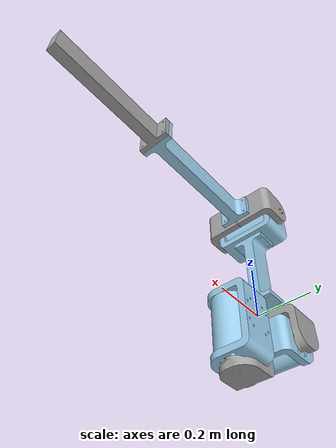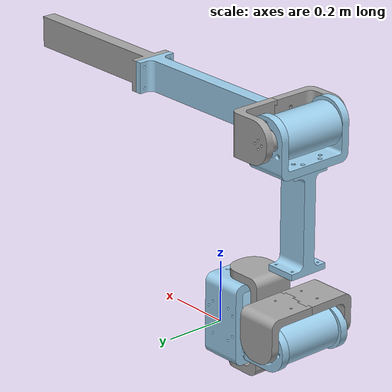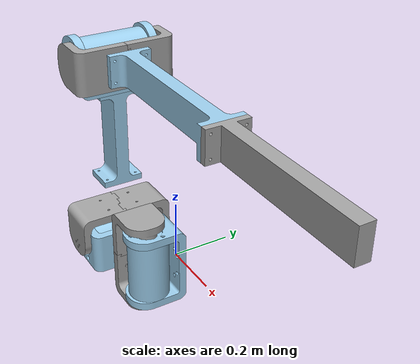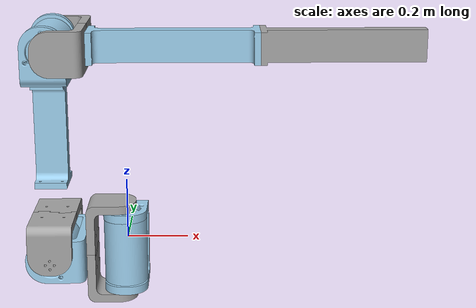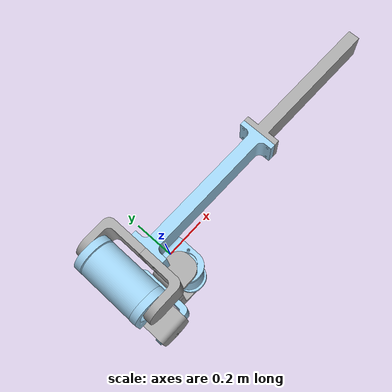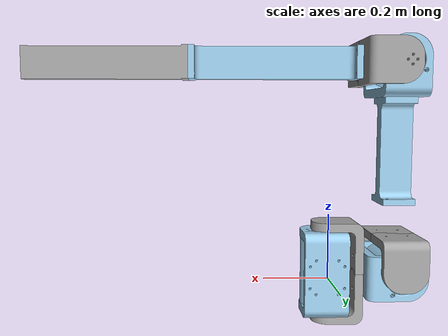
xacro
<?xml version="1.0"?>
<!-- Basic differential drive mobile base -->
<robot xmlns:xacro="http://www.ros.org/wiki/xacro" name="diffdrive_robot">

  <xacro:include filename="$(find spider-description)/robot.urdf" />

  <ros2_control name="Spider" type="system">
    <hardware>
        <plugin>spider_ros_control/SpiderHardwareInterface</plugin>
        <param name="serial_port">/dev/tty.usbmodem210</param>
    </hardware>

    <joint name="1-1">
       <param name="leg_id">1</param>
       <param name="motor_id">1</param>
    </joint>
    <joint name="1-2">
       <param name="leg_id">1</param>
       <param name="motor_id">2</param>
    </joint>
    <joint name="1-3">
       <param name="leg_id">1</param>
       <param name="motor_id">3</param>
    </joint>

  </ros2_control>

</robot>

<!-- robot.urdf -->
<!-- Generated using onshape-to-robot -->
<!-- Onshape https://cad.onshape.com/documents/238e8faca9c7214bccace665/w/ac168b104948c1f839976186/e/24599102151386cccc6b72ba -->
<robot name="spider-description">
  <!-- Link motor_holder -->
  <link name="motor_holder">
    <inertial>
      <origin xyz="0 0 0" rpy="0 0 0"/>
      <mass value="0"/>
      <inertia ixx="0" ixy="0" ixz="0" iyy="0" iyz="0" izz="0"/>
    </inertial>
    <!-- Part motor_holder -->
    <visual>
      <origin xyz="-0.07 -0.027 1.38778e-17" rpy="-3.14159 -1.5708 0"/>
      <geometry>
        <mesh filename="package://spider-description/assets/motor_holder.stl"/>
      </geometry>
      <material name="motor_holder_material">
        <color rgba="0.615686 0.811765 0.929412 1"/>
      </material>
    </visual>
    <collision>
      <origin xyz="-0.07 -0.027 1.38778e-17" rpy="-3.14159 -1.5708 0"/>
      <geometry>
        <mesh filename="package://spider-description/assets/motor_holder.stl"/>
      </geometry>
    </collision>
    <!-- Part motor_model -->
    <visual>
      <origin xyz="-1.38778e-17 -0.106278 -0.108" rpy="0 -0 -1.5708"/>
      <geometry>
        <mesh filename="package://spider-description/assets/motor_model.stl"/>
      </geometry>
      <material name="motor_model_material">
        <color rgba="0.615686 0.811765 0.929412 1"/>
      </material>
    </visual>
    <collision>
      <origin xyz="-1.38778e-17 -0.106278 -0.108" rpy="0 -0 -1.5708"/>
      <geometry>
        <mesh filename="package://spider-description/assets/motor_model.stl"/>
      </geometry>
    </collision>
  </link>
  <!-- Link moving_frame_l -->
  <link name="moving_frame_l">
    <inertial>
      <origin xyz="0.166888 -0.000702224 0.11374" rpy="0 0 0"/>
      <mass value="9.51769"/>
      <inertia ixx="0.0949959" ixy="0.000393819" ixz="0.000302419" iyy="0.1134" iyz="-1.35219e-06" izz="0.10408"/>
    </inertial>
    <!-- Part motor_holder_2 -->
    <visual>
      <origin xyz="0.149 -0.000161803 0.04355" rpy="-1.4383e-16 -4.73317e-30 -1.5708"/>
      <geometry>
        <mesh filename="package://spider-description/assets/motor_holder.stl"/>
      </geometry>
      <material name="motor_holder_2_material">
        <color rgba="0.615686 0.811765 0.929412 1"/>
      </material>
    </visual>
    <collision>
      <origin xyz="0.149 -0.000161803 0.04355" rpy="-1.4383e-16 -4.73317e-30 -1.5708"/>
      <geometry>
        <mesh filename="package://spider-description/assets/motor_holder.stl"/>
      </geometry>
    </collision>
    <!-- Part motor_model_2 -->
    <visual>
      <origin xyz="0.228278 0.107838 0.11355" rpy="1.5708 1.5708 0"/>
      <geometry>
        <mesh filename="package://spider-description/assets/motor_model.stl"/>
      </geometry>
      <material name="motor_model_2_material">
        <color rgba="0.615686 0.811765 0.929412 1"/>
      </material>
    </visual>
    <collision>
      <origin xyz="0.228278 0.107838 0.11355" rpy="1.5708 1.5708 0"/>
      <geometry>
        <mesh filename="package://spider-description/assets/motor_model.stl"/>
      </geometry>
    </collision>
    <!-- Part moving_frame_r -->
    <visual>
      <origin xyz="-0.08 0.07 0.11365" rpy="1.5708 1.5708 0"/>
      <geometry>
        <mesh filename="package://spider-description/assets/moving_frame_r.stl"/>
      </geometry>
      <material name="moving_frame_r_material">
        <color rgba="0.647059 0.647059 0.647059 1"/>
      </material>
    </visual>
    <collision>
      <origin xyz="-0.08 0.07 0.11365" rpy="1.5708 1.5708 0"/>
      <geometry>
        <mesh filename="package://spider-description/assets/moving_frame_r.stl"/>
      </geometry>
    </collision>
    <!-- Part moving_frame_l -->
    <visual>
      <origin xyz="-0.08 0.07 0.11345" rpy="1.5708 1.5708 0"/>
      <geometry>
        <mesh filename="package://spider-description/assets/moving_frame_l.stl"/>
      </geometry>
      <material name="moving_frame_l_material">
        <color rgba="0.647059 0.647059 0.647059 1"/>
      </material>
    </visual>
    <collision>
      <origin xyz="-0.08 0.07 0.11345" rpy="1.5708 1.5708 0"/>
      <geometry>
        <mesh filename="package://spider-description/assets/moving_frame_l.stl"/>
      </geometry>
    </collision>
  </link>
  <!-- Link moving_frame_l_2 -->
  <link name="moving_frame_l_2">
    <inertial>
      <origin xyz="-0.00012427 -0.438975 -0.113249" rpy="0 0 0"/>
      <mass value="12.6662"/>
      <inertia ixx="0.888548" ixy="-0.000174694" ixz="3.56443e-07" iyy="0.0992591" iyz="0.00208744" izz="0.821886"/>
    </inertial>
    <!-- Part motor_model_3 -->
    <visual>
      <origin xyz="-0.000161803 -0.668278 -0.22155" rpy="-3.07249e-15 -2.42575e-15 -2.5235e-14"/>
      <geometry>
        <mesh filename="package://spider-description/assets/motor_model.stl"/>
      </geometry>
      <material name="motor_model_3_material">
        <color rgba="0.615686 0.811765 0.929412 1"/>
      </material>
    </visual>
    <collision>
      <origin xyz="-0.000161803 -0.668278 -0.22155" rpy="-3.07249e-15 -2.42575e-15 -2.5235e-14"/>
      <geometry>
        <mesh filename="package://spider-description/assets/motor_model.stl"/>
      </geometry>
    </collision>
    <!-- Part femur__limb_legnth_0_4_meter -->
    <visual>
      <origin xyz="-0.000161803 -0.562 -0.11355" rpy="-1.5708 -1.5708 0"/>
      <geometry>
        <mesh filename="package://spider-description/assets/femur__limb_legnth_0_4_meter.stl"/>
      </geometry>
      <material name="femur__limb_legnth_0_4_meter_material">
        <color rgba="0.615686 0.811765 0.929412 1"/>
      </material>
    </visual>
    <collision>
      <origin xyz="-0.000161803 -0.562 -0.11355" rpy="-1.5708 -1.5708 0"/>
      <geometry>
        <mesh filename="package://spider-description/assets/femur__limb_legnth_0_4_meter.stl"/>
      </geometry>
    </collision>
    <!-- Part moving_frame_l_2 -->
    <visual>
      <origin xyz="-0.07 0.08 -0.11345" rpy="3.14159 -1.5708 0"/>
      <geometry>
        <mesh filename="package://spider-description/assets/moving_frame_l.stl"/>
      </geometry>
      <material name="moving_frame_l_2_material">
        <color rgba="0.647059 0.647059 0.647059 1"/>
      </material>
    </visual>
    <collision>
      <origin xyz="-0.07 0.08 -0.11345" rpy="3.14159 -1.5708 0"/>
      <geometry>
        <mesh filename="package://spider-description/assets/moving_frame_l.stl"/>
      </geometry>
    </collision>
    <!-- Part moving_frame_r_2 -->
    <visual>
      <origin xyz="-0.07 0.08 -0.11365" rpy="3.14159 -1.5708 0"/>
      <geometry>
        <mesh filename="package://spider-description/assets/moving_frame_r.stl"/>
      </geometry>
      <material name="moving_frame_r_2_material">
        <color rgba="0.647059 0.647059 0.647059 1"/>
      </material>
    </visual>
    <collision>
      <origin xyz="-0.07 0.08 -0.11365" rpy="3.14159 -1.5708 0"/>
      <geometry>
        <mesh filename="package://spider-description/assets/moving_frame_r.stl"/>
      </geometry>
    </collision>
    <!-- Part motor_holder_3 -->
    <visual>
      <origin xyz="-0.0701618 -0.589 -0.11355" rpy="3.14159 -1.5708 0"/>
      <geometry>
        <mesh filename="package://spider-description/assets/motor_holder.stl"/>
      </geometry>
      <material name="motor_holder_3_material">
        <color rgba="0.615686 0.811765 0.929412 1"/>
      </material>
    </visual>
    <collision>
      <origin xyz="-0.0701618 -0.589 -0.11355" rpy="3.14159 -1.5708 0"/>
      <geometry>
        <mesh filename="package://spider-description/assets/motor_holder.stl"/>
      </geometry>
    </collision>
  </link>
  <!-- Link moving_frame_l_3 -->
  <link name="moving_frame_l_3">
    <inertial>
      <origin xyz="0.468863 0.00011439 0.113731" rpy="0 0 0"/>
      <mass value="10.0269"/>
      <inertia ixx="0.0561408" ixy="-0.000188903" ixz="0.000849629" iyy="1.36864" iyz="1.27622e-07" izz="1.33351"/>
    </inertial>
    <!-- Part moving_frame_r_3 -->
    <visual>
      <origin xyz="-0.08 0.07 0.11365" rpy="1.5708 1.5708 0"/>
      <geometry>
        <mesh filename="package://spider-description/assets/moving_frame_r.stl"/>
      </geometry>
      <material name="moving_frame_r_3_material">
        <color rgba="0.647059 0.647059 0.647059 1"/>
      </material>
    </visual>
    <collision>
      <origin xyz="-0.08 0.07 0.11365" rpy="1.5708 1.5708 0"/>
      <geometry>
        <mesh filename="package://spider-description/assets/moving_frame_r.stl"/>
      </geometry>
    </collision>
    <!-- Part toe__limb_legnth_0_5_meter -->
    <visual>
      <origin xyz="0.682 0.000161803 0.11355" rpy="5.843e-28 -1.5708 0"/>
      <geometry>
        <mesh filename="package://spider-description/assets/toe__limb_legnth_0_5_meter.stl"/>
      </geometry>
      <material name="toe__limb_legnth_0_5_meter_material">
        <color rgba="0.647059 0.647059 0.647059 1"/>
      </material>
    </visual>
    <collision>
      <origin xyz="0.682 0.000161803 0.11355" rpy="5.843e-28 -1.5708 0"/>
      <geometry>
        <mesh filename="package://spider-description/assets/toe__limb_legnth_0_5_meter.stl"/>
      </geometry>
    </collision>
    <!-- Part femur__limb_legnth_0_5_meter -->
    <visual>
      <origin xyz="0.662 0.000161803 0.11355" rpy="1.20737e-15 -1.5708 0"/>
      <geometry>
        <mesh filename="package://spider-description/assets/femur__limb_legnth_0_5_meter.stl"/>
      </geometry>
      <material name="femur__limb_legnth_0_5_meter_material">
        <color rgba="0.615686 0.811765 0.929412 1"/>
      </material>
    </visual>
    <collision>
      <origin xyz="0.662 0.000161803 0.11355" rpy="1.20737e-15 -1.5708 0"/>
      <geometry>
        <mesh filename="package://spider-description/assets/femur__limb_legnth_0_5_meter.stl"/>
      </geometry>
    </collision>
    <!-- Part moving_frame_l_3 -->
    <visual>
      <origin xyz="-0.08 0.07 0.11345" rpy="1.5708 1.5708 0"/>
      <geometry>
        <mesh filename="package://spider-description/assets/moving_frame_l.stl"/>
      </geometry>
      <material name="moving_frame_l_3_material">
        <color rgba="0.647059 0.647059 0.647059 1"/>
      </material>
    </visual>
    <collision>
      <origin xyz="-0.08 0.07 0.11345" rpy="1.5708 1.5708 0"/>
      <geometry>
        <mesh filename="package://spider-description/assets/moving_frame_l.stl"/>
      </geometry>
    </collision>
  </link>
  <!-- Joint from moving_frame_l_2 to moving_frame_l_3 -->
  <joint name="1-3" type="revolute">
    <origin xyz="-0.000161803 -0.669 -0.22755" rpy="6.87867e-17 2.6966e-15 3.14159"/>
    <parent link="moving_frame_l_2"/>
    <child link="moving_frame_l_3"/>
    <axis xyz="0 0 1"/>
    <limit effort="10" velocity="10" lower="0" upper="3.14159"/>
  </joint>
  <!-- Joint from moving_frame_l to moving_frame_l_2 -->
  <joint name="1-2" type="revolute">
    <origin xyz="0.229 0.107838 0.11355" rpy="-1.5708 1.4383e-16 -3.64292e-16"/>
    <parent link="moving_frame_l"/>
    <child link="moving_frame_l_2"/>
    <axis xyz="0 0 1"/>
    <limit effort="10" velocity="10" lower="-2.4869e-14" upper="3.14159"/>
  </joint>
  <!-- Joint from motor_holder to moving_frame_l -->
  <joint name="1-1" type="revolute">
    <origin xyz="-2.80687e-17 -0.107 -0.114" rpy="-6.07154e-16 1.44907e-19 -3.14159"/>
    <parent link="motor_holder"/>
    <child link="moving_frame_l"/>
    <axis xyz="0 0 1"/>
    <limit effort="10" velocity="10" lower="0" upper="3.14159"/>
  </joint>
</robot>
